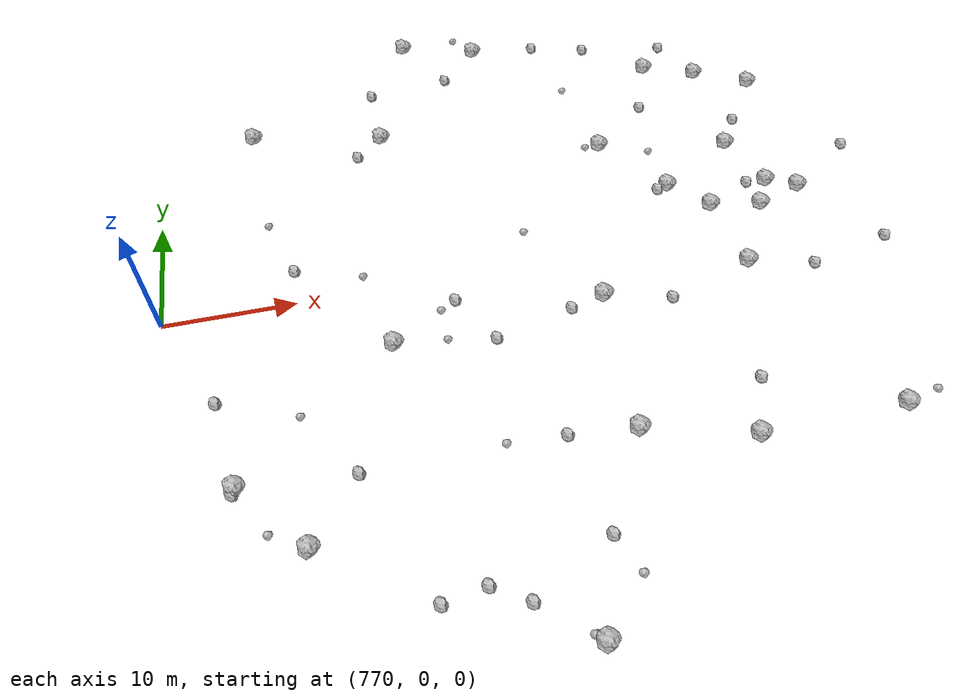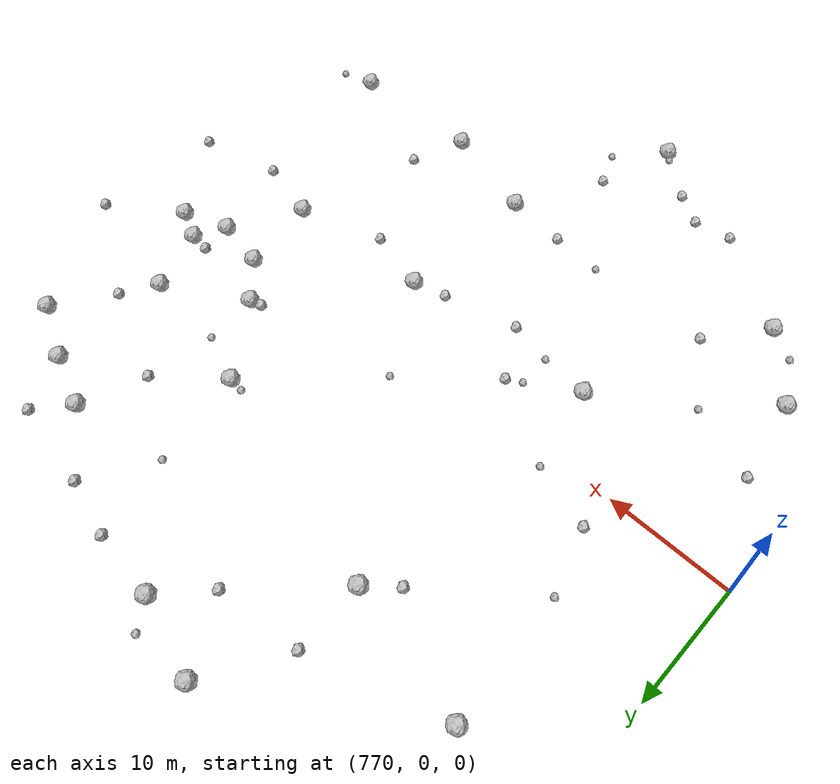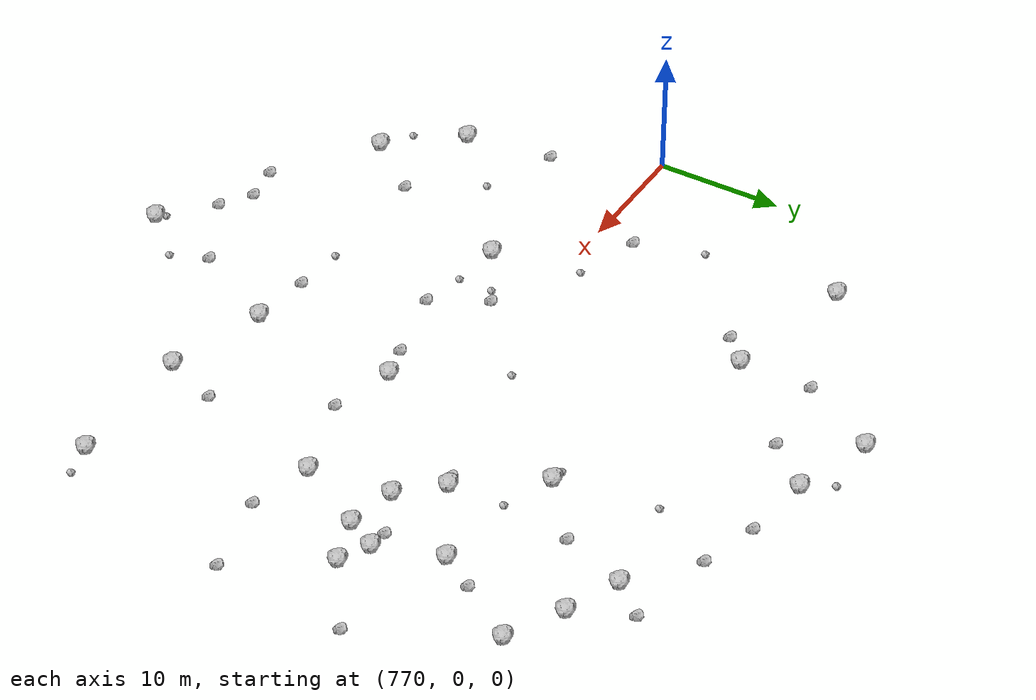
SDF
<sdf version="1.6">
 <world name="default">
  <include><uri>model://sun</uri></include>
  <model name="rock1_20_4">
   <include><uri>model://rock1</uri><pose>810.0391262488926 -18.43538025419136 0.5 0 0 0</pose></include>
  </model>
  <model name="rock1_20_5">
   <include><uri>model://rock1</uri><pose>819.3952377975716 4.469001399146542 0.5 0 0 0</pose></include>
  </model>
  <model name="rock1_20_6">
   <include><uri>model://rock1</uri><pose>796.0141747154813 -29.688270419885544 0.5 0 0 0</pose></include>
  </model>
  <model name="rock1_20_7">
   <include><uri>model://rock1</uri><pose>818.0163453489489 2.0084828333413824 0.5 0 0 0</pose></include>
  </model>
  <model name="rock1_20_8">
   <include><uri>model://rock1</uri><pose>777.7614809117474 19.04061086686074 0.5 0 0 0</pose></include>
  </model>
  <model name="rock1_20_9">
   <include><uri>model://rock1</uri><pose>820.9783592785025 -18.347238417356664 0.5 0 0 0</pose></include>
  </model>
  <model name="rock1_20_10">
   <include><uri>model://rock1</uri><pose>792.283152695337 28.698937386772187 0.5 0 0 0</pose></include>
  </model>
  <model name="rock1_20_11">
   <include><uri>model://rock1</uri><pose>774.868889048452 -14.752640157675582 0.5 0 0 0</pose></include>
  </model>
  <model name="rock1_20_12">
   <include><uri>model://rock1</uri><pose>779.2966221045335 -20.007288668495022 0.5 0 0 0</pose></include>
  </model>
  <model name="rock1_20_13">
   <include><uri>model://rock1</uri><pose>821.7820635793529 3.3137264490173592 0.5 0 0 0</pose></include>
  </model>
  <model name="rock1_20_14">
   <include><uri>model://rock1</uri><pose>786.6610046814923 -5.467738434990046 0.5 0 0 0</pose></include>
  </model>
  <model name="rock1_20_15">
   <include><uri>model://rock1</uri><pose>813.9689004312569 2.7654262893344708 0.5 0 0 0</pose></include>
  </model>
  <model name="rock1_20_16">
   <include><uri>model://rock1</uri><pose>788.5919252441458 16.700328622733444 0.5 0 0 0</pose></include>
  </model>
  <model name="rock1_20_17">
   <include><uri>model://rock1</uri><pose>802.1075084701997 -16.18194016380401 0.5 0 0 0</pose></include>
  </model>
  <model name="rock1_20_18">
   <include><uri>model://rock1</uri><pose>817.6630641458041 9.514000625642026 0.5 0 0 0</pose></include>
  </model>
  <model name="rock1_20_19">
   <include><uri>model://rock1</uri><pose>813.788621908425 20.888898615431344 0.5 0 0 0</pose></include>
  </model>
  <model name="rock1_20_20">
   <include><uri>model://rock1</uri><pose>806.9219829591489 11.635797127124349 0.5 0 0 0</pose></include>
  </model>
  <model name="rock1_20_21">
   <include><uri>model://rock1</uri><pose>798.6127409629952 26.764314126103216 0.5 0 0 0</pose></include>
  </model>
  <model name="rock1_20_22">
   <include><uri>model://rock1</uri><pose>814.8162795447394 -3.60357530129707 0.5 0 0 0</pose></include>
  </model>
  <model name="rock1_20_23">
   <include><uri>model://rock1</uri><pose>822.5439902175755 16.909037232574498 0.5 0 0 0</pose></include>
  </model>
  <model name="rock1_20_24">
   <include><uri>model://rock1</uri><pose>818.1157920256827 19.176419439838796 0.5 0 0 0</pose></include>
  </model>
  <model name="rock1_20_25">
   <include><uri>model://rock1</uri><pose>811.1912150641069 5.699602386023237 0.5 0 0 0</pose></include>
  </model>
  <model name="rock1_20_26">
   <include><uri>model://rock1</uri><pose>802.8692368412376 -4.416354777130486 0.5 0 0 0</pose></include>
  </model>
  <model name="rock2_20_0">
   <include><uri>model://rock2</uri><pose>792.221165271336 -26.419390662389585 0.3 0 0 0</pose></include>
  </model>
  <model name="rock2_20_1">
   <include><uri>model://rock2</uri><pose>798.1682645901915 -23.26145498564499 0.3 0 0 0</pose></include>
  </model>
  <model name="rock2_20_2">
   <include><uri>model://rock2</uri><pose>786.3140873722953 14.717778690057614 0.3 0 0 0</pose></include>
  </model>
  <model name="rock2_20_3">
   <include><uri>model://rock2</uri><pose>794.0770765737645 -6.622149920405906 0.3 0 0 0</pose></include>
  </model>
  <model name="rock2_20_4">
   <include><uri>model://rock2</uri><pose>819.7660400663466 -4.944978140131134 0.3 0 0 0</pose></include>
  </model>
  <model name="rock2_20_5">
   <include><uri>model://rock2</uri><pose>782.933424564684 -15.44603938420207 0.3 0 0 0</pose></include>
  </model>
  <model name="rock2_20_6">
   <include><uri>model://rock2</uri><pose>807.8670773781905 -5.798315113902611 0.3 0 0 0</pose></include>
  </model>
  <model name="rock2_20_7">
   <include><uri>model://rock2</uri><pose>774.6524675687323 -15.146408032651944 0.3 0 0 0</pose></include>
  </model>
  <model name="rock2_20_8">
   <include><uri>model://rock2</uri><pose>795.3098230574319 23.21737580800717 0.3 0 0 0</pose></include>
  </model>
  <model name="rock2_20_9">
   <include><uri>model://rock2</uri><pose>811.7248783225004 -14.098382060743429 0.3 0 0 0</pose></include>
  </model>
  <model name="rock2_20_10">
   <include><uri>model://rock2</uri><pose>819.3538463386053 12.312349245602832 0.3 0 0 0</pose></include>
  </model>
  <model name="rock2_20_11">
   <include><uri>model://rock2</uri><pose>797.1235688986911 -15.653447230320838 0.3 0 0 0</pose></include>
  </model>
  <model name="rock2_20_12">
   <include><uri>model://rock2</uri><pose>810.2100633091621 5.409313216448517 0.3 0 0 0</pose></include>
  </model>
  <model name="rock2_20_13">
   <include><uri>model://rock2</uri><pose>808.8458349106251 24.8181598944228 0.3 0 0 0</pose></include>
  </model>
  <model name="rock2_20_14">
   <include><uri>model://rock2</uri><pose>773.7586506347842 -7.8483384563193255 0.3 0 0 0</pose></include>
  </model>
  <model name="rock2_20_15">
   <include><uri>model://rock2</uri><pose>786.737713139146 -25.354049902760714 0.3 0 0 0</pose></include>
  </model>
  <model name="rock2_20_16">
   <include><uri>model://rock2</uri><pose>800.1281569809273 -5.119690987838357 0.3 0 0 0</pose></include>
  </model>
  <model name="rock2_20_17">
   <include><uri>model://rock2</uri><pose>780.0537984307354 3.059599007090249 0.3 0 0 0</pose></include>
  </model>
  <model name="rock2_20_18">
   <include><uri>model://rock2</uri><pose>789.7884633055738 -24.844573402280986 0.3 0 0 0</pose></include>
  </model>
  <model name="rock2_20_19">
   <include><uri>model://rock2</uri><pose>816.0150631596932 23.55442182405443 0.3 0 0 0</pose></include>
  </model>
  <model name="rock2_20_20">
   <include><uri>model://rock2</uri><pose>804.1790055583043 26.10909904631953 0.3 0 0 0</pose></include>
  </model>
  <model name="rock2_20_21">
   <include><uri>model://rock2</uri><pose>788.4569805152674 22.43972333362916 0.3 0 0 0</pose></include>
  </model>
  <model name="rock2_20_22">
   <include><uri>model://rock2</uri><pose>826.3759883057564 -3.4552254600790846 0.3 0 0 0</pose></include>
  </model>
  <model name="rock2_20_23">
   <include><uri>model://rock2</uri><pose>827.4235432251049 7.208563083327846 0.3 0 0 0</pose></include>
  </model>
  <model name="rock2_20_24">
   <include><uri>model://rock2</uri><pose>811.7394796562717 15.660213848770368 0.3 0 0 0</pose></include>
  </model>
  <model name="rock2_20_25">
   <include><uri>model://rock2</uri><pose>817.7317165415145 4.604586608869511 0.3 0 0 0</pose></include>
  </model>
  <model name="rock2_20_26">
   <include><uri>model://rock2</uri><pose>791.7140251038105 -2.4597009023591134 0.3 0 0 0</pose></include>
  </model>
  <model name="rock3_20_0">
   <include><uri>model://rock3</uri><pose>798.2964076861335 3.203058201913528 0.2 0 0 0</pose></include>
  </model>
  <model name="rock3_20_1">
   <include><uri>model://rock3</uri><pose>778.3843306621284 8.309087167697584 0.2 0 0 0</pose></include>
  </model>
  <model name="rock3_20_2">
   <include><uri>model://rock3</uri><pose>785.1812527677839 1.4011609389453632 0.2 0 0 0</pose></include>
  </model>
  <model name="rock3_20_3">
   <include><uri>model://rock3</uri><pose>790.5493266449764 -5.938512246742615 0.2 0 0 0</pose></include>
  </model>
  <model name="rock3_20_4">
   <include><uri>model://rock3</uri><pose>779.4755381328523 -10.205893866119297 0.2 0 0 0</pose></include>
  </model>
  <model name="rock3_20_5">
   <include><uri>model://rock3</uri><pose>790.5207324419256 -3.1792627438259125 0.2 0 0 0</pose></include>
  </model>
  <model name="rock3_20_6">
   <include><uri>model://rock3</uri><pose>799.2987244939578 -26.13688663233331 0.2 0 0 0</pose></include>
  </model>
  <model name="rock3_20_7">
   <include><uri>model://rock3</uri><pose>797.0691332775305 28.88421087408772 0.2 0 0 0</pose></include>
  </model>
  <model name="rock3_20_8">
   <include><uri>model://rock3</uri><pose>776.7788797627169 -18.540455059837942 0.2 0 0 0</pose></include>
  </model>
  <model name="rock3_20_9">
   <include><uri>model://rock3</uri><pose>792.930853073512 -15.396805911032384 0.2 0 0 0</pose></include>
  </model>
  <model name="rock3_20_10">
   <include><uri>model://rock3</uri><pose>795.3820155307201 -29.14580078234608 0.2 0 0 0</pose></include>
  </model>
  <model name="rock3_20_11">
   <include><uri>model://rock3</uri><pose>810.8491508130486 10.02281419973967 0.2 0 0 0</pose></include>
  </model>
  <model name="rock3_20_12">
   <include><uri>model://rock3</uri><pose>823.5523827704391 -17.75713728306934 0.2 0 0 0</pose></include>
  </model>
  <model name="rock3_20_13">
   <include><uri>model://rock3</uri><pose>805.6669033361787 11.682462049653537 0.2 0 0 0</pose></include>
  </model>
  <model name="rock3_20_14">
   <include><uri>model://rock3</uri><pose>805.5571170494596 19.45271287917894 0.2 0 0 0</pose></include>
  </model>
 </world>
</sdf>
